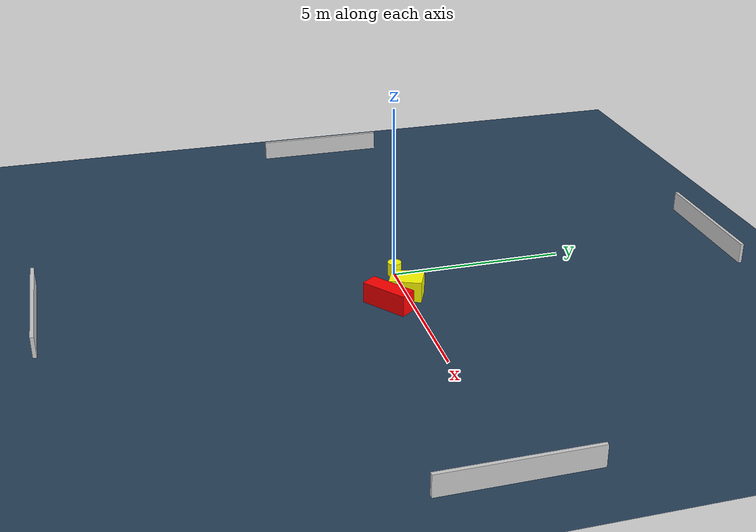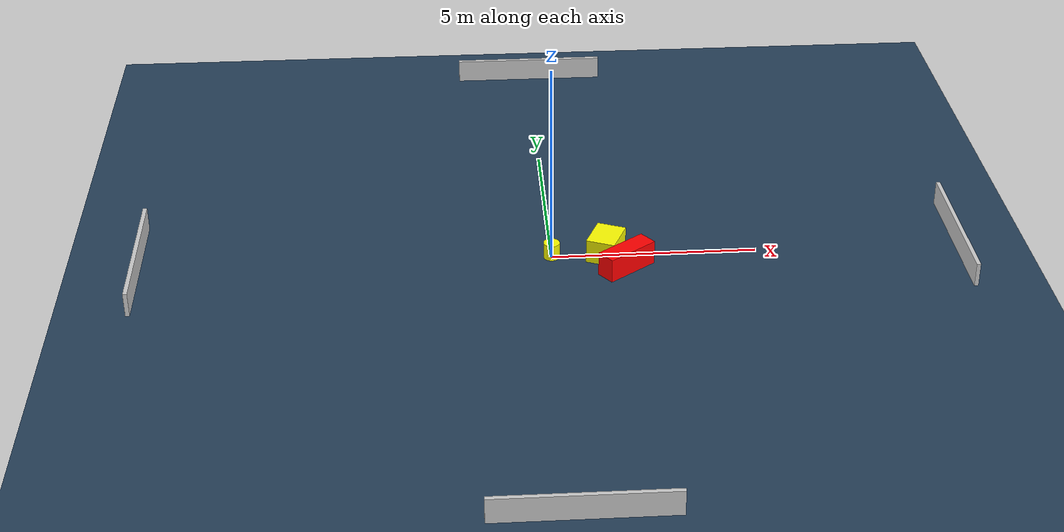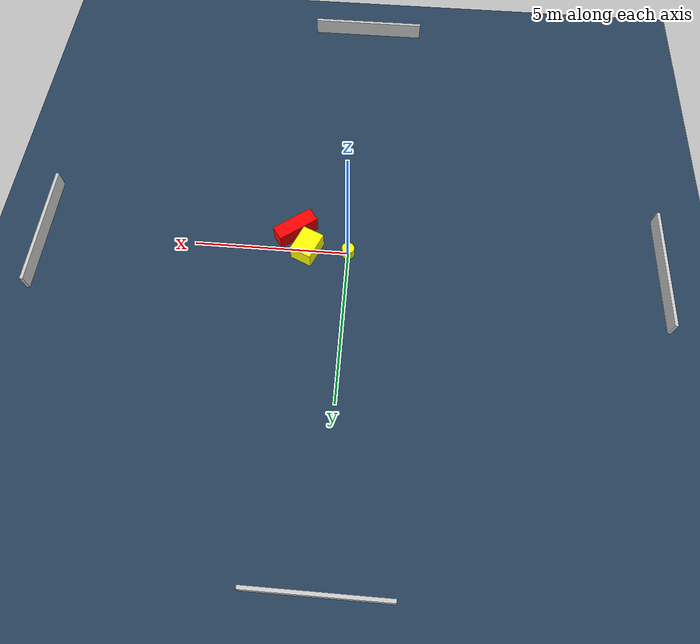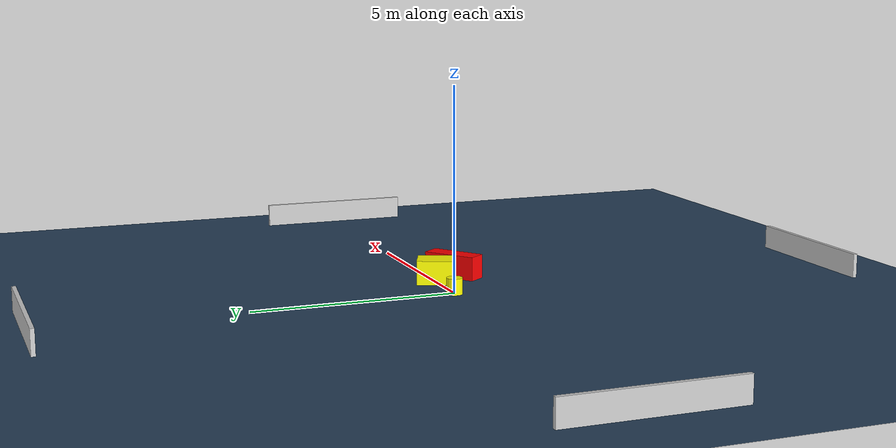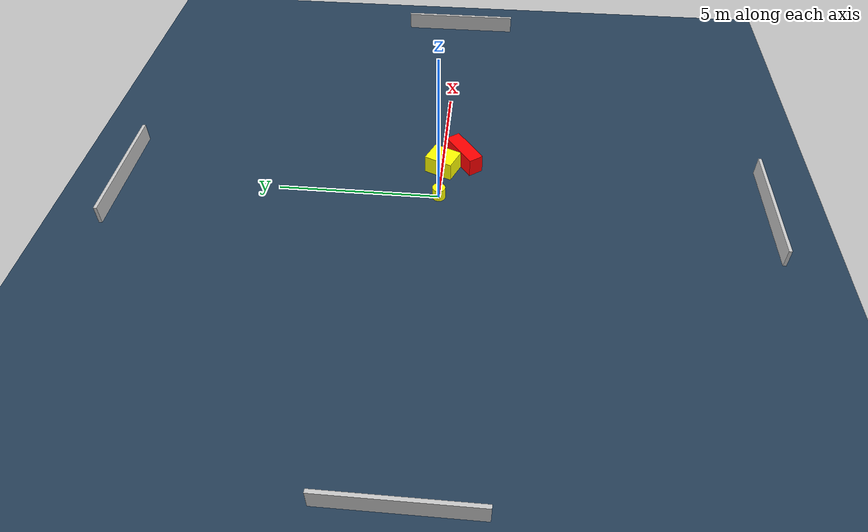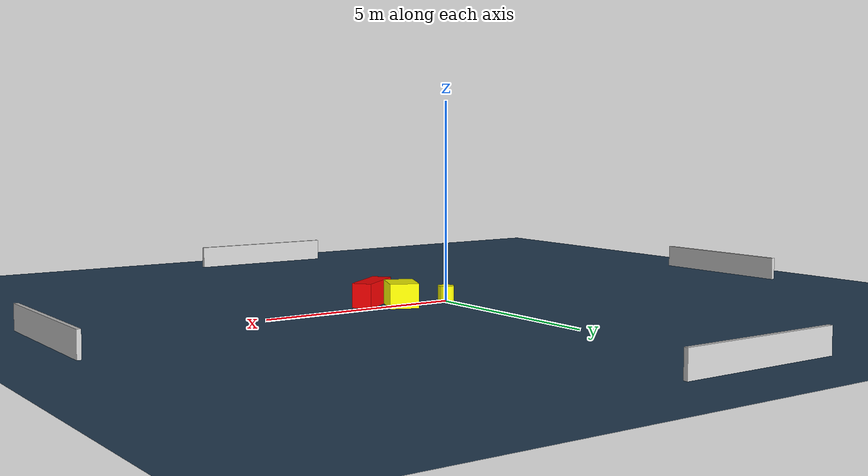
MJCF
<?xml version="1.0" ?>
<mujoco model="generated_environment">
  <option timestep="0.01" integrator="RK4" cone="elliptic"/>
  <default>
    <geom density="1"/>
  </default>
  <asset>
    <texture builtin="gradient" height="3072" name="skybox" rgb1="0.3 0.5 0.7" rgb2="0 0 0" type="skybox" width="512"/>
    <texture builtin="checker" height="300" name="groundplane" rgb1="0.2 0.3 0.4" rgb2="0.1 0.2 0.3" type="2d" width="300"/>
    <material name="groundplane" reflectance="0.2" texrepeat="5 5" texture="groundplane"/>
  </asset>
  <worldbody>
    <light dir="0 0 -1" directional="true" pos="0 0 1.5"/>
    <geom condim="3" friction="0.5 0.005 0.001" material="groundplane" name="floor" pos="0 0 0" size="0 0 0.05" type="plane"/>
    <body name="walls">
      <geom name="wall_1" condim="4" pos="-10.0 0.0 0.3" rgba="0.800000011920929 0.800000011920929 0.800000011920929 1.0" size="0.05 2.0 0.3" type="box"/>
      <geom name="wall_2" condim="4" pos="10.0 0.0 0.3" rgba="0.800000011920929 0.800000011920929 0.800000011920929 1.0" size="0.05 2.0 0.3" type="box"/>
      <geom name="wall_3" condim="4" pos="0.0 -10.0 0.3" rgba="0.800000011920929 0.800000011920929 0.800000011920929 1.0" size="2.0 0.05 0.3" type="box"/>
      <geom name="wall_4" condim="4" pos="0.0 10.0 0.3" rgba="0.800000011920929 0.800000011920929 0.800000011920929 1.0" size="2.0 0.05 0.3" type="box"/>
    </body>
    <body name="robot">
      <joint name="joint_x" type="slide" pos="0 0 0" axis="1 0 0"/>
      <joint name="joint_y" type="slide" pos="0 0 0" axis="0 1 0"/>
      <geom name="robot" type="cylinder" pos="0.0 0.0 0.2" size="0.2 0.2 0.0" mass="5.0" friction="1.0 0.005 0.0001" condim="4" rgba="1.0 1.0 0.0 1.0"/>
    </body>
    <body name="obstacle_1_movable">
      <geom name="obstacle_1_movable" condim="4" pos="1.324276265124065 -0.017572531404412405 0.3" euler="0 0 336.75193851016326" friction="0.0 0.005 0.001" rgba="1.0 1.0 0.0 1.0" size="0.3570892454504778 0.4552175701105463 0.3" type="box" mass="0.1"/>
      <joint type="free"/>
    </body>
    <body name="obstacle_2_static">
      <geom name="obstacle_2_static" condim="4" pos="1.7671968965957996 -0.6631984095894244 0.3" euler="0 0 126.79196870611155" friction="0.0 0.005 0.001" rgba="1.0 0.0 0.0 1.0" size="0.24187958185647634 0.690562242275184 0.3" type="box"/>
    </body>
  </worldbody>
  <actuator>
    <motor name="actuator_x" joint="joint_x" gear="1" ctrlrange="-1 1"/>
    <motor name="actuator_y" joint="joint_y" gear="1" ctrlrange="-1 1"/>
  </actuator>
</mujoco>
